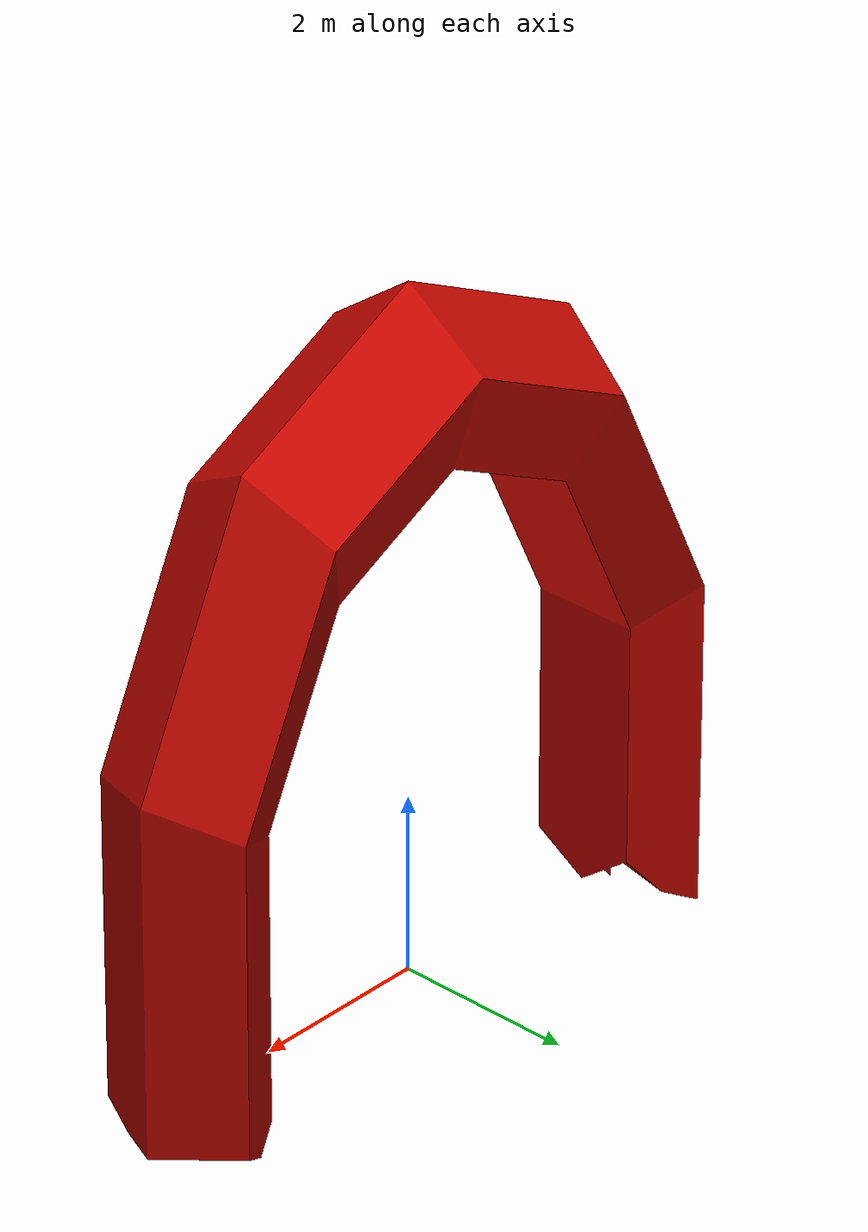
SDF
<?xml version='1.0' ?>
<sdf version='1.6'>
  <model name='Simple U'>
    <pose>0 0 0 0 0 0</pose>
    <static>true</static>
    <link name="link">
      <collision name="collision">
        <geometry>
          <mesh>
            <uri>model://Simple U/meshes/Simple U.dae</uri>
            <scale>1 1 1</scale>
         </mesh>
        </geometry>
      </collision>
      <visual name="visual">
        <geometry>
          <mesh>
            <uri>model://Simple U/meshes/Simple U.dae</uri>
            <scale>1 1 1</scale>
         </mesh>
        </geometry>
      </visual>
    </link>
  </model>
 </sdf>
